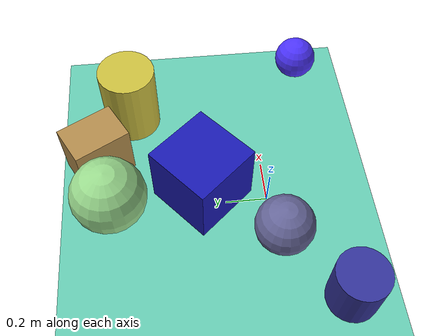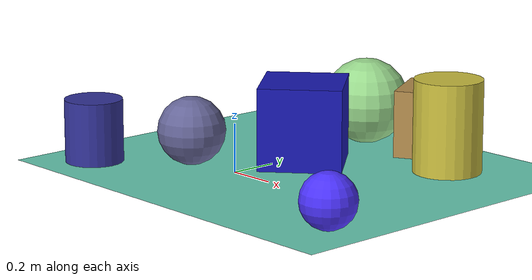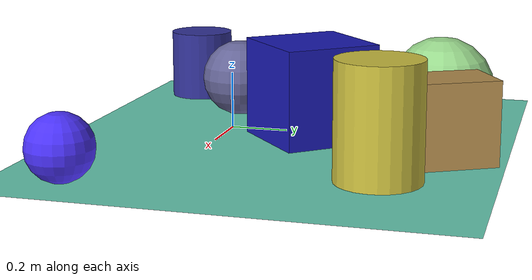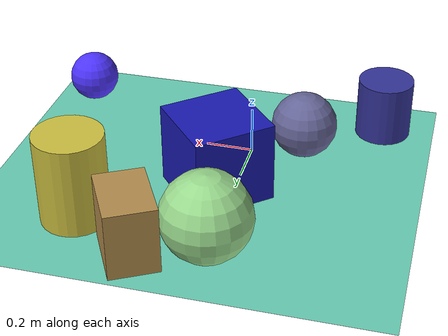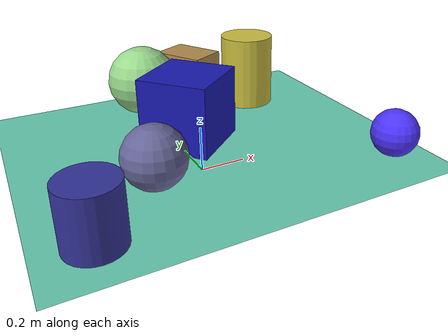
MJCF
<mujoco>
   <asset>
<texture type="skybox" builtin="gradient" rgb1="0.4 0.3 0.7" rgb2="0.4 0.7 0.1" width="500" height="500"/>
<texture name="gradient_0" builtin="gradient" rgb1="0.7 1.0 0.1" rgb2="0.9 0.5 0.4" width="500" height="500"/>
<texture name="flat_1" builtin="flat" rgb1="0.1 0.1 0.7" rgb2="0.1 0.1 0.7"  width="500" height="500"/>
<texture name="checker_2" builtin="checker" rgb1="0.9 0.8 0.5" rgb2="0.3 0.9 0.6" width="500" height="500"/>
<texture name="gradient_3" builtin="gradient" rgb1="0.5 0.2 0.5" rgb2="0.9 0.9 0.1" width="500" height="500"/>
<texture name="flat_4" builtin="flat" rgb1="0.2 0.2 0.6" rgb2="0.2 0.2 0.6"  width="500" height="500"/>
<texture name="flat_5" builtin="flat" rgb1="0.3 0.2 1.0" rgb2="0.3 0.2 1.0"  width="500" height="500"/>
<texture name="gradient_6" builtin="gradient" rgb1="0.5 0.7 0.8" rgb2="0.3 0.1 0.4" width="500" height="500"/><material name="gradient_0_mat" reflectance="0.901482514601689" texture="gradient_0" texuniform="true"/>
<material name="flat_1_mat" reflectance="0.4444271841722145" texture="flat_1" texuniform="true"/>
<material name="checker_2_mat" reflectance="0.7436726873039397" texrepeat="9 9" texture="checker_2" texuniform="false" />
<material name="gradient_3_mat" reflectance="0.4737824825909589" texture="gradient_3" texuniform="true"/>
<material name="flat_4_mat" reflectance="0.10995089996562357" texture="flat_4" texuniform="true"/>
<material name="flat_5_mat" reflectance="0.8992400772110047" texture="flat_5" texuniform="true"/>
<material name="gradient_6_mat" reflectance="0.5446397166567376" texture="gradient_6" texuniform="true"/>
   </asset>

   <worldbody>
     <geom type="plane" size="1 1 0.1" rgba="0.4 0.8 0.7 1" />
<light pos="-0.25323082992821155 0.2038668020336496 2" dir="0 0 -1" cutoff="90" diffuse="1 1 1" specular="1 1 1"/>
<geom type="cylinder" pos="0.56 0.64 0.19" size="0.14 0.19 0.19" material="gradient_0_mat" euler="0 0 25" />
<geom type="box" pos="0.07 0.31 0.17" size="0.17 0.17 0.17" material="flat_1_mat" euler="0 0 41" />
<geom type="sphere" pos="-0.01 0.75 0.18" size="0.18 0.18 0.18" material="checker_2_mat" euler="0 0 27" />
<geom type="box" pos="0.28 0.81 0.14" size="0.1 0.14 0.14" material="gradient_3_mat" euler="0 0 29" />
<geom type="cylinder" pos="-0.53 -0.3 0.13" size="0.12 0.13 0.13" material="flat_4_mat" euler="0 0 73" />
<geom type="sphere" pos="0.83 -0.28 0.11" size="0.11 0.11 0.11" material="flat_5_mat" euler="0 0 15" />
<geom type="sphere" pos="-0.22 -0.04 0.14" size="0.14 0.14 0.14" material="gradient_6_mat" euler="0 0 35" /><camera euler="60 0 180" fovy="60" name="camera1" pos="-0.2 -1.5 1"></camera>   </worldbody>
   <visual>
      <headlight diffuse="0.7 0.7 0.7"/>
   </visual>
</mujoco>
